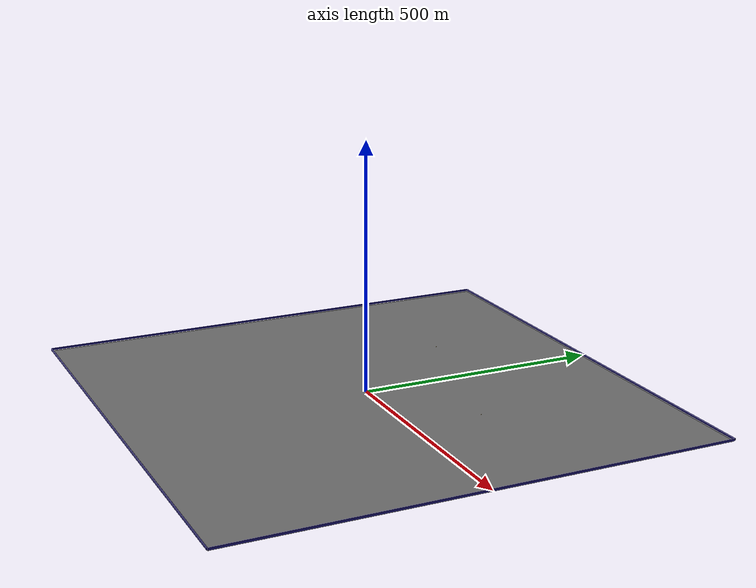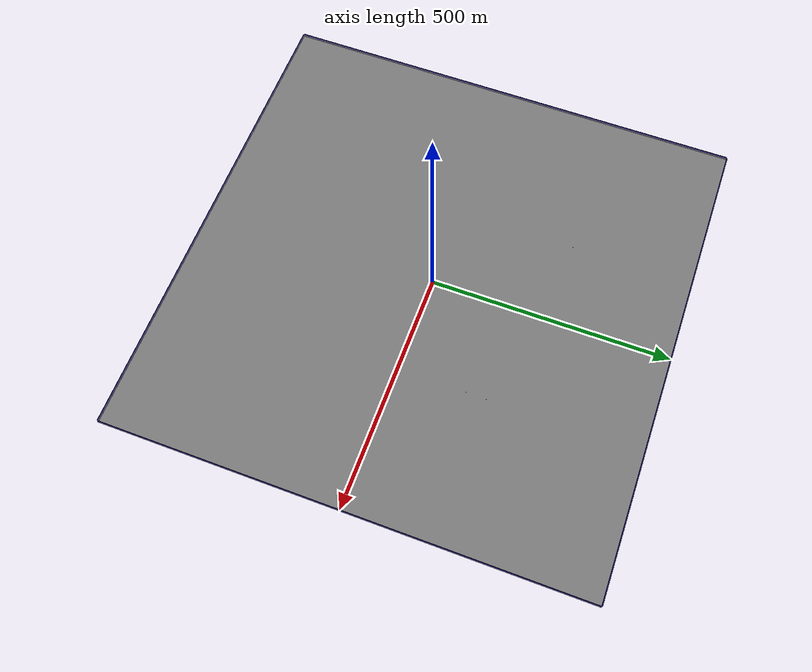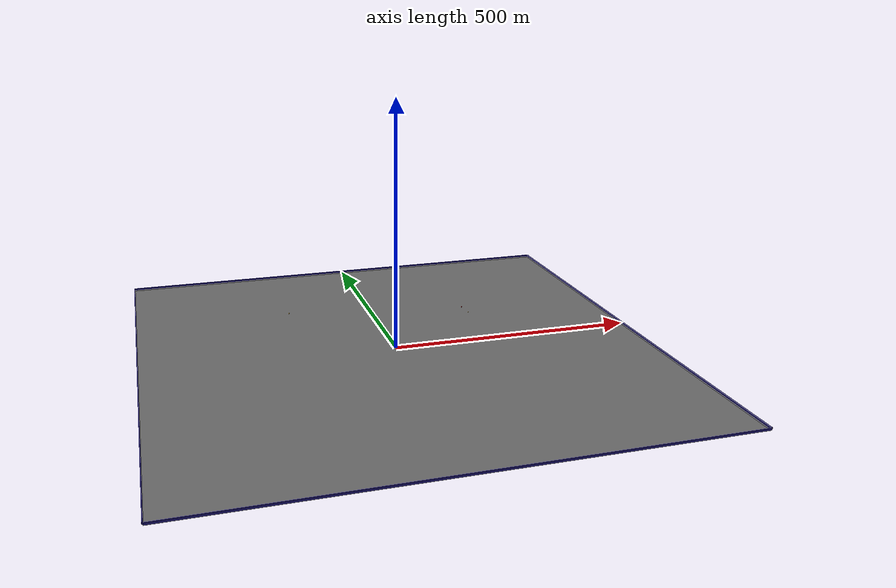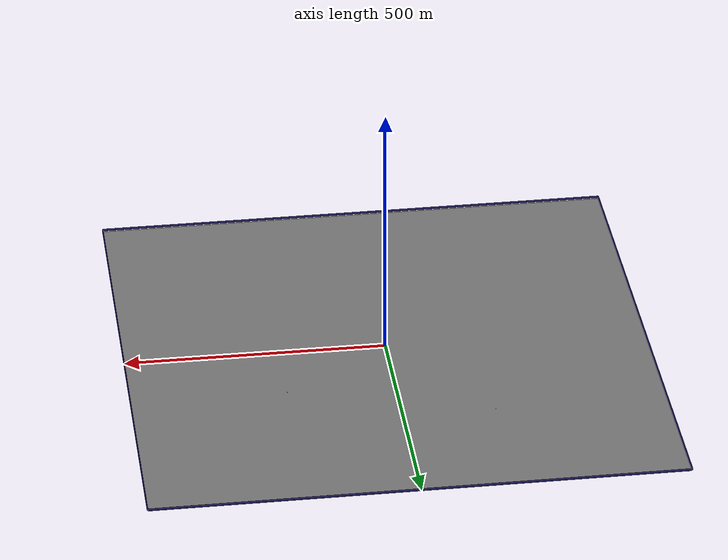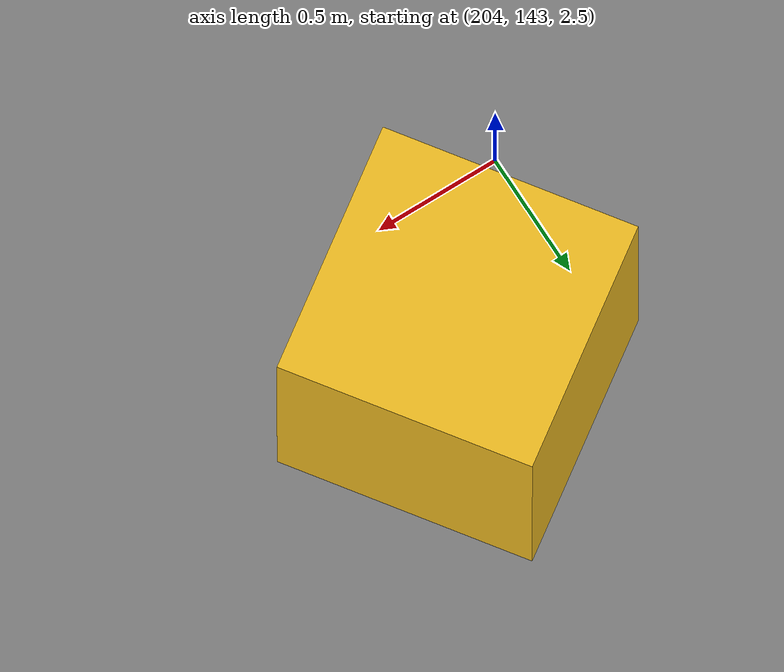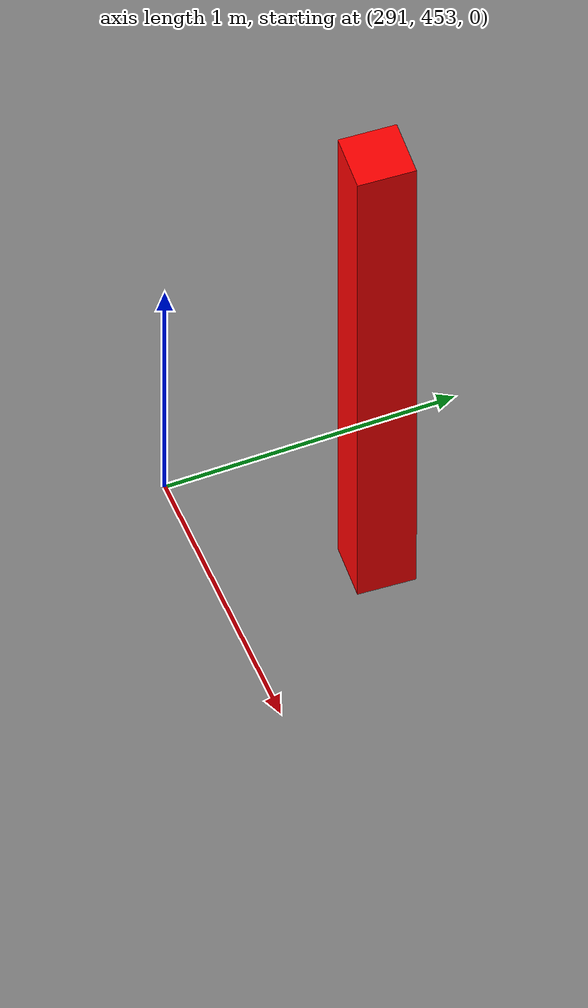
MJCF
<mujoco model="unnamed_model">
  <default>
    <default class="/" />
    <default class="border/" />
    <default class="border_1/" />
    <default class="border_2/" />
    <default class="border_3/" />
    <default class="agentplaceholder/" />
    <default class="placeholder_box/" />
    <default class="stone0/" />
    <default class="stone1/" />
    <default class="tree/" />
    <default class="tree_1/" />
  </default>
  <worldbody>
    <body name="border/">
      <body name="border/border" pos="0 501 2">
        <geom name="border/border_geom" class="border/" type="box" size="500 1 2" rgba="0.035000000000000003 0.016 0.28999999999999998 1" />
      </body>
    </body>
    <body name="border_1/">
      <body name="border_1/border" pos="0 -501 2">
        <geom name="border_1/border_geom" class="border_1/" type="box" size="500 1 2" rgba="0.035000000000000003 0.016 0.28999999999999998 1" />
      </body>
    </body>
    <body name="border_2/">
      <body name="border_2/border" pos="501 0 2">
        <geom name="border_2/border_geom" class="border_2/" type="box" size="1 500 2" rgba="0.035000000000000003 0.016 0.28999999999999998 1" />
      </body>
    </body>
    <body name="border_3/">
      <body name="border_3/border" pos="-501 0 2">
        <geom name="border_3/border_geom" class="border_3/" type="box" size="1 500 2" rgba="0.035000000000000003 0.016 0.28999999999999998 1" />
      </body>
    </body>
    <body euler="0 0 -144.92130657391402" name="agentplaceholder/">
      <joint name="agentplaceholder/boxagent_freeJoint/" class="/" type="free" />
      <body name="agentplaceholder/agentplaceholder" pos="-250 0 3" euler="0 0 0">
        <geom name="agentplaceholder/boxagent_geom" class="agentplaceholder/" type="box" size="0.5 0.5 0.5" rgba="0.94899999999999995 0.74509999999999998 0.1333 1" euler="0 0 0" />
      </body>
    </body>
    <body name="placeholder_box/">
      <body name="placeholder_box/placeholder_box" pos="-175.61540000000002 248.02499999999998 0.5" euler="0 0 35.637064920761617">
        <geom name="placeholder_box/box_geom" class="placeholder_box/" type="box" size="0.5 0.5 0.5" rgba="0.94899999999999995 0.74509999999999998 0.1333 1" euler="0 0 0" />
      </body>
    </body>
    <body name="stone0/">
      <body name="stone0/stone0" pos="141.25310000000002 24.988600000000019 0.10000000000000001" euler="0 0 143.2405666412094">
        <geom name="stone0/stone_geom" class="stone0/" type="box" size="0.10000000000000001 0.10000000000000001 2" rgba="1 0 0 1" />
      </body>
    </body>
    <body name="stone1/">
      <body name="stone1/stone1" pos="204.4288 185.21569999999997 0.10000000000000001" euler="0 0 -132.16603570071888">
        <geom name="stone1/stone_geom" class="stone1/" type="box" size="0.10000000000000001 0.10000000000000001 2" rgba="1 0 0 1" />
      </body>
    </body>
    <body name="tree/">
      <body name="tree/tree" pos="268.06385 -256.58190000000002 0.10000000000000001" euler="0 0 77.789452165099874">
        <geom name="tree/tree_geom" class="tree/" type="box" size="0.10000000000000001 0.10000000000000001 2" rgba="1 0 0 1" />
      </body>
    </body>
    <body name="tree_1/">
      <body name="tree_1/tree" pos="291.54124999999999 453.51639999999998 0.10000000000000001" euler="0 0 -3.2581008719383249">
        <geom name="tree_1/tree_geom" class="tree_1/" type="box" size="0.10000000000000001 0.10000000000000001 2" rgba="1 0 0 1" />
      </body>
    </body>
    <geom name="base_plane" class="/" type="plane" size="500 500 0.10000000000000001" />
  </worldbody>
</mujoco>
